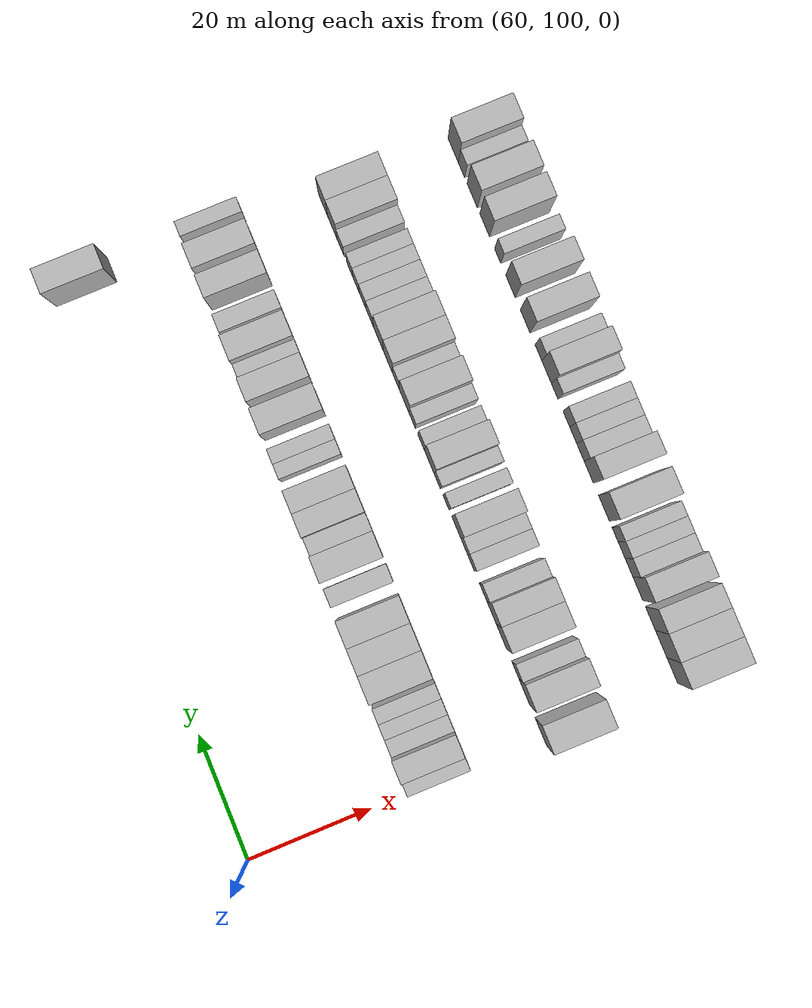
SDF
<sdf version="1.6">
 <world name="default">
  <model name="building_535">
   <static>1</static>
   <pose>69.0000 191.1627 0 0.000000 0.000000 0.000000</pose>
   <link name="link">
    <pose>0 0 4.50 0 0 0</pose>
    <collision name="collision"><geometry><box><size>10.0000 4.0500 9.0000</size></box></geometry></collision>
    <visual name="visual">
     <cast_shadows>0</cast_shadows>
     <geometry><box><size>10.0000 4.0500 9.0000</size></box></geometry>
     <material>
      <script>
       <uri>model://HANNAS_wall/materials/scripts</uri>
       <uri>model://HANNAS_wall/materials/textures</uri>
       <name>vrc/HANNAS_wall</name>
      </script>
     </material>
    </visual>
   </link>
  </model>
  <model name="building_699">
   <static>1</static>
   <pose>91.0000 101.8920 0 0.000000 0.000000 0.000000</pose>
   <link name="link">
    <pose>0 0 3.00 0 0 0</pose>
    <collision name="collision"><geometry><box><size>10.0000 2.4958 6.0000</size></box></geometry></collision>
    <visual name="visual">
     <cast_shadows>0</cast_shadows>
     <geometry><box><size>10.0000 2.4958 6.0000</size></box></geometry>
     <material>
      <script>
       <uri>model://HANNAS_wall/materials/scripts</uri>
       <uri>model://HANNAS_wall/materials/textures</uri>
       <name>vrc/HANNAS_wall</name>
      </script>
     </material>
    </visual>
   </link>
  </model>
  <model name="building_700">
   <static>1</static>
   <pose>91.0000 104.9542 0 0.000000 0.000000 0.000000</pose>
   <link name="link">
    <pose>0 0 4.50 0 0 0</pose>
    <collision name="collision"><geometry><box><size>10.0000 3.6286 9.0000</size></box></geometry></collision>
    <visual name="visual">
     <cast_shadows>0</cast_shadows>
     <geometry><box><size>10.0000 3.6286 9.0000</size></box></geometry>
     <material>
      <script>
       <uri>model://HANNAS_wall/materials/scripts</uri>
       <uri>model://HANNAS_wall/materials/textures</uri>
       <name>vrc/HANNAS_wall</name>
      </script>
     </material>
    </visual>
   </link>
  </model>
  <model name="building_701">
   <static>1</static>
   <pose>91.0000 108.1022 0 0.000000 0.000000 0.000000</pose>
   <link name="link">
    <pose>0 0 3.00 0 0 0</pose>
    <collision name="collision"><geometry><box><size>10.0000 2.6673 6.0000</size></box></geometry></collision>
    <visual name="visual">
     <cast_shadows>0</cast_shadows>
     <geometry><box><size>10.0000 2.6673 6.0000</size></box></geometry>
     <material>
      <script>
       <uri>model://HANNAS_wall/materials/scripts</uri>
       <uri>model://HANNAS_wall/materials/textures</uri>
       <name>vrc/HANNAS_wall</name>
      </script>
     </material>
    </visual>
   </link>
  </model>
  <model name="building_702">
   <static>1</static>
   <pose>91.0000 110.6603 0 0.000000 0.000000 0.000000</pose>
   <link name="link">
    <pose>0 0 3.00 0 0 0</pose>
    <collision name="collision"><geometry><box><size>10.0000 2.4488 6.0000</size></box></geometry></collision>
    <visual name="visual">
     <cast_shadows>0</cast_shadows>
     <geometry><box><size>10.0000 2.4488 6.0000</size></box></geometry>
     <material>
      <script>
       <uri>model://HANNAS_wall/materials/scripts</uri>
       <uri>model://HANNAS_wall/materials/textures</uri>
       <name>vrc/HANNAS_wall</name>
      </script>
     </material>
    </visual>
   </link>
  </model>
  <model name="building_703">
   <static>1</static>
   <pose>91.0000 113.1162 0 0.000000 0.000000 0.000000</pose>
   <link name="link">
    <pose>0 0 3.00 0 0 0</pose>
    <collision name="collision"><geometry><box><size>10.0000 2.4630 6.0000</size></box></geometry></collision>
    <visual name="visual">
     <cast_shadows>0</cast_shadows>
     <geometry><box><size>10.0000 2.4630 6.0000</size></box></geometry>
     <material>
      <script>
       <uri>model://HANNAS_wall/materials/scripts</uri>
       <uri>model://HANNAS_wall/materials/textures</uri>
       <name>vrc/HANNAS_wall</name>
      </script>
     </material>
    </visual>
   </link>
  </model>
  <model name="building_704">
   <static>1</static>
   <pose>91.0000 117.5740 0 0.000000 0.000000 0.000000</pose>
   <link name="link">
    <pose>0 0 4.50 0 0 0</pose>
    <collision name="collision"><geometry><box><size>10.0000 4.4526 9.0000</size></box></geometry></collision>
    <visual name="visual">
     <cast_shadows>0</cast_shadows>
     <geometry><box><size>10.0000 4.4526 9.0000</size></box></geometry>
     <material>
      <script>
       <uri>model://HANNAS_wall/materials/scripts</uri>
       <uri>model://HANNAS_wall/materials/textures</uri>
       <name>vrc/HANNAS_wall</name>
      </script>
     </material>
    </visual>
   </link>
  </model>
  <model name="building_705">
   <static>1</static>
   <pose>91.0000 121.9148 0 0.000000 0.000000 0.000000</pose>
   <link name="link">
    <pose>0 0 4.50 0 0 0</pose>
    <collision name="collision"><geometry><box><size>10.0000 4.2292 9.0000</size></box></geometry></collision>
    <visual name="visual">
     <cast_shadows>0</cast_shadows>
     <geometry><box><size>10.0000 4.2292 9.0000</size></box></geometry>
     <material>
      <script>
       <uri>model://HANNAS_wall/materials/scripts</uri>
       <uri>model://HANNAS_wall/materials/textures</uri>
       <name>vrc/HANNAS_wall</name>
      </script>
     </material>
    </visual>
   </link>
  </model>
  <model name="building_706">
   <static>1</static>
   <pose>91.0000 126.1777 0 0.000000 0.000000 0.000000</pose>
   <link name="link">
    <pose>0 0 4.50 0 0 0</pose>
    <collision name="collision"><geometry><box><size>10.0000 4.2966 9.0000</size></box></geometry></collision>
    <visual name="visual">
     <cast_shadows>0</cast_shadows>
     <geometry><box><size>10.0000 4.2966 9.0000</size></box></geometry>
     <material>
      <script>
       <uri>model://HANNAS_wall/materials/scripts</uri>
       <uri>model://HANNAS_wall/materials/textures</uri>
       <name>vrc/HANNAS_wall</name>
      </script>
     </material>
    </visual>
   </link>
  </model>
  <model name="building_707">
   <static>1</static>
   <pose>91.0000 131.7904 0 0.000000 0.000000 0.000000</pose>
   <link name="link">
    <pose>0 0 3.00 0 0 0</pose>
    <collision name="collision"><geometry><box><size>10.0000 2.9289 6.0000</size></box></geometry></collision>
    <visual name="visual">
     <cast_shadows>0</cast_shadows>
     <geometry><box><size>10.0000 2.9289 6.0000</size></box></geometry>
     <material>
      <script>
       <uri>model://HANNAS_wall/materials/scripts</uri>
       <uri>model://HANNAS_wall/materials/textures</uri>
       <name>vrc/HANNAS_wall</name>
      </script>
     </material>
    </visual>
   </link>
  </model>
  <model name="building_708">
   <static>1</static>
   <pose>91.0000 136.3468 0 0.000000 0.000000 0.000000</pose>
   <link name="link">
    <pose>0 0 4.50 0 0 0</pose>
    <collision name="collision"><geometry><box><size>10.0000 4.1839 9.0000</size></box></geometry></collision>
    <visual name="visual">
     <cast_shadows>0</cast_shadows>
     <geometry><box><size>10.0000 4.1839 9.0000</size></box></geometry>
     <material>
      <script>
       <uri>model://HANNAS_wall/materials/scripts</uri>
       <uri>model://HANNAS_wall/materials/textures</uri>
       <name>vrc/HANNAS_wall</name>
      </script>
     </material>
    </visual>
   </link>
  </model>
  <model name="building_709">
   <static>1</static>
   <pose>91.0000 139.9166 0 0.000000 0.000000 0.000000</pose>
   <link name="link">
    <pose>0 0 3.00 0 0 0</pose>
    <collision name="collision"><geometry><box><size>10.0000 2.9558 6.0000</size></box></geometry></collision>
    <visual name="visual">
     <cast_shadows>0</cast_shadows>
     <geometry><box><size>10.0000 2.9558 6.0000</size></box></geometry>
     <material>
      <script>
       <uri>model://HANNAS_wall/materials/scripts</uri>
       <uri>model://HANNAS_wall/materials/textures</uri>
       <name>vrc/HANNAS_wall</name>
      </script>
     </material>
    </visual>
   </link>
  </model>
  <model name="building_710">
   <static>1</static>
   <pose>91.0000 143.2649 0 0.000000 0.000000 0.000000</pose>
   <link name="link">
    <pose>0 0 4.50 0 0 0</pose>
    <collision name="collision"><geometry><box><size>10.0000 3.7407 9.0000</size></box></geometry></collision>
    <visual name="visual">
     <cast_shadows>0</cast_shadows>
     <geometry><box><size>10.0000 3.7407 9.0000</size></box></geometry>
     <material>
      <script>
       <uri>model://HANNAS_wall/materials/scripts</uri>
       <uri>model://HANNAS_wall/materials/textures</uri>
       <name>vrc/HANNAS_wall</name>
      </script>
     </material>
    </visual>
   </link>
  </model>
  <model name="building_711">
   <static>1</static>
   <pose>91.0000 146.9647 0 0.000000 0.000000 0.000000</pose>
   <link name="link">
    <pose>0 0 4.50 0 0 0</pose>
    <collision name="collision"><geometry><box><size>10.0000 3.6589 9.0000</size></box></geometry></collision>
    <visual name="visual">
     <cast_shadows>0</cast_shadows>
     <geometry><box><size>10.0000 3.6589 9.0000</size></box></geometry>
     <material>
      <script>
       <uri>model://HANNAS_wall/materials/scripts</uri>
       <uri>model://HANNAS_wall/materials/textures</uri>
       <name>vrc/HANNAS_wall</name>
      </script>
     </material>
    </visual>
   </link>
  </model>
  <model name="building_712">
   <static>1</static>
   <pose>91.0000 152.0023 0 0.000000 0.000000 0.000000</pose>
   <link name="link">
    <pose>0 0 3.00 0 0 0</pose>
    <collision name="collision"><geometry><box><size>10.0000 2.4163 6.0000</size></box></geometry></collision>
    <visual name="visual">
     <cast_shadows>0</cast_shadows>
     <geometry><box><size>10.0000 2.4163 6.0000</size></box></geometry>
     <material>
      <script>
       <uri>model://HANNAS_wall/materials/scripts</uri>
       <uri>model://HANNAS_wall/materials/textures</uri>
       <name>vrc/HANNAS_wall</name>
      </script>
     </material>
    </visual>
   </link>
  </model>
  <model name="building_713">
   <static>1</static>
   <pose>91.0000 154.4177 0 0.000000 0.000000 0.000000</pose>
   <link name="link">
    <pose>0 0 3.00 0 0 0</pose>
    <collision name="collision"><geometry><box><size>10.0000 2.4145 6.0000</size></box></geometry></collision>
    <visual name="visual">
     <cast_shadows>0</cast_shadows>
     <geometry><box><size>10.0000 2.4145 6.0000</size></box></geometry>
     <material>
      <script>
       <uri>model://HANNAS_wall/materials/scripts</uri>
       <uri>model://HANNAS_wall/materials/textures</uri>
       <name>vrc/HANNAS_wall</name>
      </script>
     </material>
    </visual>
   </link>
  </model>
  <model name="building_714">
   <static>1</static>
   <pose>91.0000 159.7480 0 0.000000 0.000000 0.000000</pose>
   <link name="link">
    <pose>0 0 4.50 0 0 0</pose>
    <collision name="collision"><geometry><box><size>10.0000 4.2460 9.0000</size></box></geometry></collision>
    <visual name="visual">
     <cast_shadows>0</cast_shadows>
     <geometry><box><size>10.0000 4.2460 9.0000</size></box></geometry>
     <material>
      <script>
       <uri>model://HANNAS_wall/materials/scripts</uri>
       <uri>model://HANNAS_wall/materials/textures</uri>
       <name>vrc/HANNAS_wall</name>
      </script>
     </material>
    </visual>
   </link>
  </model>
  <model name="building_715">
   <static>1</static>
   <pose>91.0000 164.7931 0 0.000000 0.000000 0.000000</pose>
   <link name="link">
    <pose>0 0 4.50 0 0 0</pose>
    <collision name="collision"><geometry><box><size>10.0000 3.8442 9.0000</size></box></geometry></collision>
    <visual name="visual">
     <cast_shadows>0</cast_shadows>
     <geometry><box><size>10.0000 3.8442 9.0000</size></box></geometry>
     <material>
      <script>
       <uri>model://HANNAS_wall/materials/scripts</uri>
       <uri>model://HANNAS_wall/materials/textures</uri>
       <name>vrc/HANNAS_wall</name>
      </script>
     </material>
    </visual>
   </link>
  </model>
  <model name="building_716">
   <static>1</static>
   <pose>91.0000 168.0456 0 0.000000 0.000000 0.000000</pose>
   <link name="link">
    <pose>0 0 3.00 0 0 0</pose>
    <collision name="collision"><geometry><box><size>10.0000 2.6608 6.0000</size></box></geometry></collision>
    <visual name="visual">
     <cast_shadows>0</cast_shadows>
     <geometry><box><size>10.0000 2.6608 6.0000</size></box></geometry>
     <material>
      <script>
       <uri>model://HANNAS_wall/materials/scripts</uri>
       <uri>model://HANNAS_wall/materials/textures</uri>
       <name>vrc/HANNAS_wall</name>
      </script>
     </material>
    </visual>
   </link>
  </model>
  <model name="building_717">
   <static>1</static>
   <pose>91.0000 171.4487 0 0.000000 0.000000 0.000000</pose>
   <link name="link">
    <pose>0 0 4.50 0 0 0</pose>
    <collision name="collision"><geometry><box><size>10.0000 4.1453 9.0000</size></box></geometry></collision>
    <visual name="visual">
     <cast_shadows>0</cast_shadows>
     <geometry><box><size>10.0000 4.1453 9.0000</size></box></geometry>
     <material>
      <script>
       <uri>model://HANNAS_wall/materials/scripts</uri>
       <uri>model://HANNAS_wall/materials/textures</uri>
       <name>vrc/HANNAS_wall</name>
      </script>
     </material>
    </visual>
   </link>
  </model>
  <model name="building_718">
   <static>1</static>
   <pose>91.0000 175.9944 0 0.000000 0.000000 0.000000</pose>
   <link name="link">
    <pose>0 0 3.00 0 0 0</pose>
    <collision name="collision"><geometry><box><size>10.0000 2.9461 6.0000</size></box></geometry></collision>
    <visual name="visual">
     <cast_shadows>0</cast_shadows>
     <geometry><box><size>10.0000 2.9461 6.0000</size></box></geometry>
     <material>
      <script>
       <uri>model://HANNAS_wall/materials/scripts</uri>
       <uri>model://HANNAS_wall/materials/textures</uri>
       <name>vrc/HANNAS_wall</name>
      </script>
     </material>
    </visual>
   </link>
  </model>
  <model name="building_719">
   <static>1</static>
   <pose>91.0000 181.3538 0 0.000000 0.000000 0.000000</pose>
   <link name="link">
    <pose>0 0 4.50 0 0 0</pose>
    <collision name="collision"><geometry><box><size>10.0000 3.7728 9.0000</size></box></geometry></collision>
    <visual name="visual">
     <cast_shadows>0</cast_shadows>
     <geometry><box><size>10.0000 3.7728 9.0000</size></box></geometry>
     <material>
      <script>
       <uri>model://HANNAS_wall/materials/scripts</uri>
       <uri>model://HANNAS_wall/materials/textures</uri>
       <name>vrc/HANNAS_wall</name>
      </script>
     </material>
    </visual>
   </link>
  </model>
  <model name="building_720">
   <static>1</static>
   <pose>91.0000 186.2532 0 0.000000 0.000000 0.000000</pose>
   <link name="link">
    <pose>0 0 4.50 0 0 0</pose>
    <collision name="collision"><geometry><box><size>10.0000 4.0262 9.0000</size></box></geometry></collision>
    <visual name="visual">
     <cast_shadows>0</cast_shadows>
     <geometry><box><size>10.0000 4.0262 9.0000</size></box></geometry>
     <material>
      <script>
       <uri>model://HANNAS_wall/materials/scripts</uri>
       <uri>model://HANNAS_wall/materials/textures</uri>
       <name>vrc/HANNAS_wall</name>
      </script>
     </material>
    </visual>
   </link>
  </model>
  <model name="building_721">
   <static>1</static>
   <pose>91.0000 191.4788 0 0.000000 0.000000 0.000000</pose>
   <link name="link">
    <pose>0 0 3.00 0 0 0</pose>
    <collision name="collision"><geometry><box><size>10.0000 2.4249 6.0000</size></box></geometry></collision>
    <visual name="visual">
     <cast_shadows>0</cast_shadows>
     <geometry><box><size>10.0000 2.4249 6.0000</size></box></geometry>
     <material>
      <script>
       <uri>model://HANNAS_wall/materials/scripts</uri>
       <uri>model://HANNAS_wall/materials/textures</uri>
       <name>vrc/HANNAS_wall</name>
      </script>
     </material>
    </visual>
   </link>
  </model>
  <model name="building_885">
   <static>1</static>
   <pose>113.0000 100.9363 0 0.000000 0.000000 0.000000</pose>
   <link name="link">
    <pose>0 0 4.50 0 0 0</pose>
    <collision name="collision"><geometry><box><size>10.0000 4.4914 9.0000</size></box></geometry></collision>
    <visual name="visual">
     <cast_shadows>0</cast_shadows>
     <geometry><box><size>10.0000 4.4914 9.0000</size></box></geometry>
     <material>
      <script>
       <uri>model://HANNAS_wall/materials/scripts</uri>
       <uri>model://HANNAS_wall/materials/textures</uri>
       <name>vrc/HANNAS_wall</name>
      </script>
     </material>
    </visual>
   </link>
  </model>
  <model name="building_886">
   <static>1</static>
   <pose>113.0000 107.3388 0 0.000000 0.000000 0.000000</pose>
   <link name="link">
    <pose>0 0 4.50 0 0 0</pose>
    <collision name="collision"><geometry><box><size>10.0000 4.3134 9.0000</size></box></geometry></collision>
    <visual name="visual">
     <cast_shadows>0</cast_shadows>
     <geometry><box><size>10.0000 4.3134 9.0000</size></box></geometry>
     <material>
      <script>
       <uri>model://HANNAS_wall/materials/scripts</uri>
       <uri>model://HANNAS_wall/materials/textures</uri>
       <name>vrc/HANNAS_wall</name>
      </script>
     </material>
    </visual>
   </link>
  </model>
  <model name="building_887">
   <static>1</static>
   <pose>113.0000 110.9199 0 0.000000 0.000000 0.000000</pose>
   <link name="link">
    <pose>0 0 3.00 0 0 0</pose>
    <collision name="collision"><geometry><box><size>10.0000 2.8489 6.0000</size></box></geometry></collision>
    <visual name="visual">
     <cast_shadows>0</cast_shadows>
     <geometry><box><size>10.0000 2.8489 6.0000</size></box></geometry>
     <material>
      <script>
       <uri>model://HANNAS_wall/materials/scripts</uri>
       <uri>model://HANNAS_wall/materials/textures</uri>
       <name>vrc/HANNAS_wall</name>
      </script>
     </material>
    </visual>
   </link>
  </model>
  <model name="building_888">
   <static>1</static>
   <pose>113.0000 116.3784 0 0.000000 0.000000 0.000000</pose>
   <link name="link">
    <pose>0 0 4.50 0 0 0</pose>
    <collision name="collision"><geometry><box><size>10.0000 4.0681 9.0000</size></box></geometry></collision>
    <visual name="visual">
     <cast_shadows>0</cast_shadows>
     <geometry><box><size>10.0000 4.0681 9.0000</size></box></geometry>
     <material>
      <script>
       <uri>model://HANNAS_wall/materials/scripts</uri>
       <uri>model://HANNAS_wall/materials/textures</uri>
       <name>vrc/HANNAS_wall</name>
      </script>
     </material>
    </visual>
   </link>
  </model>
  <model name="building_889">
   <static>1</static>
   <pose>113.0000 120.2740 0 0.000000 0.000000 0.000000</pose>
   <link name="link">
    <pose>0 0 4.50 0 0 0</pose>
    <collision name="collision"><geometry><box><size>10.0000 3.7230 9.0000</size></box></geometry></collision>
    <visual name="visual">
     <cast_shadows>0</cast_shadows>
     <geometry><box><size>10.0000 3.7230 9.0000</size></box></geometry>
     <material>
      <script>
       <uri>model://HANNAS_wall/materials/scripts</uri>
       <uri>model://HANNAS_wall/materials/textures</uri>
       <name>vrc/HANNAS_wall</name>
      </script>
     </material>
    </visual>
   </link>
  </model>
  <model name="building_890">
   <static>1</static>
   <pose>113.0000 123.6135 0 0.000000 0.000000 0.000000</pose>
   <link name="link">
    <pose>0 0 3.00 0 0 0</pose>
    <collision name="collision"><geometry><box><size>10.0000 2.9560 6.0000</size></box></geometry></collision>
    <visual name="visual">
     <cast_shadows>0</cast_shadows>
     <geometry><box><size>10.0000 2.9560 6.0000</size></box></geometry>
     <material>
      <script>
       <uri>model://HANNAS_wall/materials/scripts</uri>
       <uri>model://HANNAS_wall/materials/textures</uri>
       <name>vrc/HANNAS_wall</name>
      </script>
     </material>
    </visual>
   </link>
  </model>
  <model name="building_891">
   <static>1</static>
   <pose>113.0000 128.4637 0 0.000000 0.000000 0.000000</pose>
   <link name="link">
    <pose>0 0 3.00 0 0 0</pose>
    <collision name="collision"><geometry><box><size>10.0000 2.7444 6.0000</size></box></geometry></collision>
    <visual name="visual">
     <cast_shadows>0</cast_shadows>
     <geometry><box><size>10.0000 2.7444 6.0000</size></box></geometry>
     <material>
      <script>
       <uri>model://HANNAS_wall/materials/scripts</uri>
       <uri>model://HANNAS_wall/materials/textures</uri>
       <name>vrc/HANNAS_wall</name>
      </script>
     </material>
    </visual>
   </link>
  </model>
  <model name="building_892">
   <static>1</static>
   <pose>113.0000 131.1409 0 0.000000 0.000000 0.000000</pose>
   <link name="link">
    <pose>0 0 3.00 0 0 0</pose>
    <collision name="collision"><geometry><box><size>10.0000 2.6101 6.0000</size></box></geometry></collision>
    <visual name="visual">
     <cast_shadows>0</cast_shadows>
     <geometry><box><size>10.0000 2.6101 6.0000</size></box></geometry>
     <material>
      <script>
       <uri>model://HANNAS_wall/materials/scripts</uri>
       <uri>model://HANNAS_wall/materials/textures</uri>
       <name>vrc/HANNAS_wall</name>
      </script>
     </material>
    </visual>
   </link>
  </model>
  <model name="building_893">
   <static>1</static>
   <pose>113.0000 134.2737 0 0.000000 0.000000 0.000000</pose>
   <link name="link">
    <pose>0 0 4.50 0 0 0</pose>
    <collision name="collision"><geometry><box><size>10.0000 3.6554 9.0000</size></box></geometry></collision>
    <visual name="visual">
     <cast_shadows>0</cast_shadows>
     <geometry><box><size>10.0000 3.6554 9.0000</size></box></geometry>
     <material>
      <script>
       <uri>model://HANNAS_wall/materials/scripts</uri>
       <uri>model://HANNAS_wall/materials/textures</uri>
       <name>vrc/HANNAS_wall</name>
      </script>
     </material>
    </visual>
   </link>
  </model>
  <model name="building_894">
   <static>1</static>
   <pose>113.0000 138.3436 0 0.000000 0.000000 0.000000</pose>
   <link name="link">
    <pose>0 0 3.00 0 0 0</pose>
    <collision name="collision"><geometry><box><size>10.0000 2.4844 6.0000</size></box></geometry></collision>
    <visual name="visual">
     <cast_shadows>0</cast_shadows>
     <geometry><box><size>10.0000 2.4844 6.0000</size></box></geometry>
     <material>
      <script>
       <uri>model://HANNAS_wall/materials/scripts</uri>
       <uri>model://HANNAS_wall/materials/textures</uri>
       <name>vrc/HANNAS_wall</name>
      </script>
     </material>
    </visual>
   </link>
  </model>
  <model name="building_895">
   <static>1</static>
   <pose>113.0000 141.8421 0 0.000000 0.000000 0.000000</pose>
   <link name="link">
    <pose>0 0 3.00 0 0 0</pose>
    <collision name="collision"><geometry><box><size>10.0000 2.5125 6.0000</size></box></geometry></collision>
    <visual name="visual">
     <cast_shadows>0</cast_shadows>
     <geometry><box><size>10.0000 2.5125 6.0000</size></box></geometry>
     <material>
      <script>
       <uri>model://HANNAS_wall/materials/scripts</uri>
       <uri>model://HANNAS_wall/materials/textures</uri>
       <name>vrc/HANNAS_wall</name>
      </script>
     </material>
    </visual>
   </link>
  </model>
  <model name="building_896">
   <static>1</static>
   <pose>113.0000 145.0548 0 0.000000 0.000000 0.000000</pose>
   <link name="link">
    <pose>0 0 4.50 0 0 0</pose>
    <collision name="collision"><geometry><box><size>10.0000 3.9129 9.0000</size></box></geometry></collision>
    <visual name="visual">
     <cast_shadows>0</cast_shadows>
     <geometry><box><size>10.0000 3.9129 9.0000</size></box></geometry>
     <material>
      <script>
       <uri>model://HANNAS_wall/materials/scripts</uri>
       <uri>model://HANNAS_wall/materials/textures</uri>
       <name>vrc/HANNAS_wall</name>
      </script>
     </material>
    </visual>
   </link>
  </model>
  <model name="building_897">
   <static>1</static>
   <pose>113.0000 148.3189 0 0.000000 0.000000 0.000000</pose>
   <link name="link">
    <pose>0 0 3.00 0 0 0</pose>
    <collision name="collision"><geometry><box><size>10.0000 2.6152 6.0000</size></box></geometry></collision>
    <visual name="visual">
     <cast_shadows>0</cast_shadows>
     <geometry><box><size>10.0000 2.6152 6.0000</size></box></geometry>
     <material>
      <script>
       <uri>model://HANNAS_wall/materials/scripts</uri>
       <uri>model://HANNAS_wall/materials/textures</uri>
       <name>vrc/HANNAS_wall</name>
      </script>
     </material>
    </visual>
   </link>
  </model>
  <model name="building_898">
   <static>1</static>
   <pose>113.0000 151.9230 0 0.000000 0.000000 0.000000</pose>
   <link name="link">
    <pose>0 0 3.00 0 0 0</pose>
    <collision name="collision"><geometry><box><size>10.0000 2.5932 6.0000</size></box></geometry></collision>
    <visual name="visual">
     <cast_shadows>0</cast_shadows>
     <geometry><box><size>10.0000 2.5932 6.0000</size></box></geometry>
     <material>
      <script>
       <uri>model://HANNAS_wall/materials/scripts</uri>
       <uri>model://HANNAS_wall/materials/textures</uri>
       <name>vrc/HANNAS_wall</name>
      </script>
     </material>
    </visual>
   </link>
  </model>
  <model name="building_899">
   <static>1</static>
   <pose>113.0000 155.2293 0 0.000000 0.000000 0.000000</pose>
   <link name="link">
    <pose>0 0 4.50 0 0 0</pose>
    <collision name="collision"><geometry><box><size>10.0000 4.0193 9.0000</size></box></geometry></collision>
    <visual name="visual">
     <cast_shadows>0</cast_shadows>
     <geometry><box><size>10.0000 4.0193 9.0000</size></box></geometry>
     <material>
      <script>
       <uri>model://HANNAS_wall/materials/scripts</uri>
       <uri>model://HANNAS_wall/materials/textures</uri>
       <name>vrc/HANNAS_wall</name>
      </script>
     </material>
    </visual>
   </link>
  </model>
  <model name="building_900">
   <static>1</static>
   <pose>113.0000 158.5718 0 0.000000 0.000000 0.000000</pose>
   <link name="link">
    <pose>0 0 3.00 0 0 0</pose>
    <collision name="collision"><geometry><box><size>10.0000 2.6658 6.0000</size></box></geometry></collision>
    <visual name="visual">
     <cast_shadows>0</cast_shadows>
     <geometry><box><size>10.0000 2.6658 6.0000</size></box></geometry>
     <material>
      <script>
       <uri>model://HANNAS_wall/materials/scripts</uri>
       <uri>model://HANNAS_wall/materials/textures</uri>
       <name>vrc/HANNAS_wall</name>
      </script>
     </material>
    </visual>
   </link>
  </model>
  <model name="building_901">
   <static>1</static>
   <pose>113.0000 161.7905 0 0.000000 0.000000 0.000000</pose>
   <link name="link">
    <pose>0 0 4.50 0 0 0</pose>
    <collision name="collision"><geometry><box><size>10.0000 3.7715 9.0000</size></box></geometry></collision>
    <visual name="visual">
     <cast_shadows>0</cast_shadows>
     <geometry><box><size>10.0000 3.7715 9.0000</size></box></geometry>
     <material>
      <script>
       <uri>model://HANNAS_wall/materials/scripts</uri>
       <uri>model://HANNAS_wall/materials/textures</uri>
       <name>vrc/HANNAS_wall</name>
      </script>
     </material>
    </visual>
   </link>
  </model>
  <model name="building_902">
   <static>1</static>
   <pose>113.0000 165.6525 0 0.000000 0.000000 0.000000</pose>
   <link name="link">
    <pose>0 0 4.50 0 0 0</pose>
    <collision name="collision"><geometry><box><size>10.0000 3.9525 9.0000</size></box></geometry></collision>
    <visual name="visual">
     <cast_shadows>0</cast_shadows>
     <geometry><box><size>10.0000 3.9525 9.0000</size></box></geometry>
     <material>
      <script>
       <uri>model://HANNAS_wall/materials/scripts</uri>
       <uri>model://HANNAS_wall/materials/textures</uri>
       <name>vrc/HANNAS_wall</name>
      </script>
     </material>
    </visual>
   </link>
  </model>
  <model name="building_903">
   <static>1</static>
   <pose>113.0000 169.1221 0 0.000000 0.000000 0.000000</pose>
   <link name="link">
    <pose>0 0 3.00 0 0 0</pose>
    <collision name="collision"><geometry><box><size>10.0000 2.9866 6.0000</size></box></geometry></collision>
    <visual name="visual">
     <cast_shadows>0</cast_shadows>
     <geometry><box><size>10.0000 2.9866 6.0000</size></box></geometry>
     <material>
      <script>
       <uri>model://HANNAS_wall/materials/scripts</uri>
       <uri>model://HANNAS_wall/materials/textures</uri>
       <name>vrc/HANNAS_wall</name>
      </script>
     </material>
    </visual>
   </link>
  </model>
  <model name="building_904">
   <static>1</static>
   <pose>113.0000 171.9971 0 0.000000 0.000000 0.000000</pose>
   <link name="link">
    <pose>0 0 3.00 0 0 0</pose>
    <collision name="collision"><geometry><box><size>10.0000 2.7635 6.0000</size></box></geometry></collision>
    <visual name="visual">
     <cast_shadows>0</cast_shadows>
     <geometry><box><size>10.0000 2.7635 6.0000</size></box></geometry>
     <material>
      <script>
       <uri>model://HANNAS_wall/materials/scripts</uri>
       <uri>model://HANNAS_wall/materials/textures</uri>
       <name>vrc/HANNAS_wall</name>
      </script>
     </material>
    </visual>
   </link>
  </model>
  <model name="building_905">
   <static>1</static>
   <pose>113.0000 174.6790 0 0.000000 0.000000 0.000000</pose>
   <link name="link">
    <pose>0 0 3.00 0 0 0</pose>
    <collision name="collision"><geometry><box><size>10.0000 2.6003 6.0000</size></box></geometry></collision>
    <visual name="visual">
     <cast_shadows>0</cast_shadows>
     <geometry><box><size>10.0000 2.6003 6.0000</size></box></geometry>
     <material>
      <script>
       <uri>model://HANNAS_wall/materials/scripts</uri>
       <uri>model://HANNAS_wall/materials/textures</uri>
       <name>vrc/HANNAS_wall</name>
      </script>
     </material>
    </visual>
   </link>
  </model>
  <model name="building_906">
   <static>1</static>
   <pose>113.0000 177.2204 0 0.000000 0.000000 0.000000</pose>
   <link name="link">
    <pose>0 0 3.00 0 0 0</pose>
    <collision name="collision"><geometry><box><size>10.0000 2.4825 6.0000</size></box></geometry></collision>
    <visual name="visual">
     <cast_shadows>0</cast_shadows>
     <geometry><box><size>10.0000 2.4825 6.0000</size></box></geometry>
     <material>
      <script>
       <uri>model://HANNAS_wall/materials/scripts</uri>
       <uri>model://HANNAS_wall/materials/textures</uri>
       <name>vrc/HANNAS_wall</name>
      </script>
     </material>
    </visual>
   </link>
  </model>
  <model name="building_907">
   <static>1</static>
   <pose>113.0000 180.8915 0 0.000000 0.000000 0.000000</pose>
   <link name="link">
    <pose>0 0 3.00 0 0 0</pose>
    <collision name="collision"><geometry><box><size>10.0000 2.8596 6.0000</size></box></geometry></collision>
    <visual name="visual">
     <cast_shadows>0</cast_shadows>
     <geometry><box><size>10.0000 2.8596 6.0000</size></box></geometry>
     <material>
      <script>
       <uri>model://HANNAS_wall/materials/scripts</uri>
       <uri>model://HANNAS_wall/materials/textures</uri>
       <name>vrc/HANNAS_wall</name>
      </script>
     </material>
    </visual>
   </link>
  </model>
  <model name="building_908">
   <static>1</static>
   <pose>113.0000 184.2659 0 0.000000 0.000000 0.000000</pose>
   <link name="link">
    <pose>0 0 4.50 0 0 0</pose>
    <collision name="collision"><geometry><box><size>10.0000 3.8892 9.0000</size></box></geometry></collision>
    <visual name="visual">
     <cast_shadows>0</cast_shadows>
     <geometry><box><size>10.0000 3.8892 9.0000</size></box></geometry>
     <material>
      <script>
       <uri>model://HANNAS_wall/materials/scripts</uri>
       <uri>model://HANNAS_wall/materials/textures</uri>
       <name>vrc/HANNAS_wall</name>
      </script>
     </material>
    </visual>
   </link>
  </model>
  <model name="building_909">
   <static>1</static>
   <pose>113.0000 188.1317 0 0.000000 0.000000 0.000000</pose>
   <link name="link">
    <pose>0 0 4.50 0 0 0</pose>
    <collision name="collision"><geometry><box><size>10.0000 3.8424 9.0000</size></box></geometry></collision>
    <visual name="visual">
     <cast_shadows>0</cast_shadows>
     <geometry><box><size>10.0000 3.8424 9.0000</size></box></geometry>
     <material>
      <script>
       <uri>model://HANNAS_wall/materials/scripts</uri>
       <uri>model://HANNAS_wall/materials/textures</uri>
       <name>vrc/HANNAS_wall</name>
      </script>
     </material>
    </visual>
   </link>
  </model>
  <model name="building_1076">
   <static>1</static>
   <pose>135.0000 101.8088 0 0.000000 0.000000 0.000000</pose>
   <link name="link">
    <pose>0 0 4.50 0 0 0</pose>
    <collision name="collision"><geometry><box><size>10.0000 4.1561 9.0000</size></box></geometry></collision>
    <visual name="visual">
     <cast_shadows>0</cast_shadows>
     <geometry><box><size>10.0000 4.1561 9.0000</size></box></geometry>
     <material>
      <script>
       <uri>model://HANNAS_wall/materials/scripts</uri>
       <uri>model://HANNAS_wall/materials/textures</uri>
       <name>vrc/HANNAS_wall</name>
      </script>
     </material>
    </visual>
   </link>
  </model>
  <model name="building_1077">
   <static>1</static>
   <pose>135.0000 106.1152 0 0.000000 0.000000 0.000000</pose>
   <link name="link">
    <pose>0 0 4.50 0 0 0</pose>
    <collision name="collision"><geometry><box><size>10.0000 4.4568 9.0000</size></box></geometry></collision>
    <visual name="visual">
     <cast_shadows>0</cast_shadows>
     <geometry><box><size>10.0000 4.4568 9.0000</size></box></geometry>
     <material>
      <script>
       <uri>model://HANNAS_wall/materials/scripts</uri>
       <uri>model://HANNAS_wall/materials/textures</uri>
       <name>vrc/HANNAS_wall</name>
      </script>
     </material>
    </visual>
   </link>
  </model>
  <model name="building_1078">
   <static>1</static>
   <pose>135.0000 110.2634 0 0.000000 0.000000 0.000000</pose>
   <link name="link">
    <pose>0 0 4.50 0 0 0</pose>
    <collision name="collision"><geometry><box><size>10.0000 3.8396 9.0000</size></box></geometry></collision>
    <visual name="visual">
     <cast_shadows>0</cast_shadows>
     <geometry><box><size>10.0000 3.8396 9.0000</size></box></geometry>
     <material>
      <script>
       <uri>model://HANNAS_wall/materials/scripts</uri>
       <uri>model://HANNAS_wall/materials/textures</uri>
       <name>vrc/HANNAS_wall</name>
      </script>
     </material>
    </visual>
   </link>
  </model>
  <model name="building_1079">
   <static>1</static>
   <pose>135.0000 115.1418 0 0.000000 0.000000 0.000000</pose>
   <link name="link">
    <pose>0 0 4.50 0 0 0</pose>
    <collision name="collision"><geometry><box><size>10.0000 3.9174 9.0000</size></box></geometry></collision>
    <visual name="visual">
     <cast_shadows>0</cast_shadows>
     <geometry><box><size>10.0000 3.9174 9.0000</size></box></geometry>
     <material>
      <script>
       <uri>model://HANNAS_wall/materials/scripts</uri>
       <uri>model://HANNAS_wall/materials/textures</uri>
       <name>vrc/HANNAS_wall</name>
      </script>
     </material>
    </visual>
   </link>
  </model>
  <model name="building_1080">
   <static>1</static>
   <pose>135.0000 118.5991 0 0.000000 0.000000 0.000000</pose>
   <link name="link">
    <pose>0 0 3.00 0 0 0</pose>
    <collision name="collision"><geometry><box><size>10.0000 2.9971 6.0000</size></box></geometry></collision>
    <visual name="visual">
     <cast_shadows>0</cast_shadows>
     <geometry><box><size>10.0000 2.9971 6.0000</size></box></geometry>
     <material>
      <script>
       <uri>model://HANNAS_wall/materials/scripts</uri>
       <uri>model://HANNAS_wall/materials/textures</uri>
       <name>vrc/HANNAS_wall</name>
      </script>
     </material>
    </visual>
   </link>
  </model>
  <model name="building_1081">
   <static>1</static>
   <pose>135.0000 121.4490 0 0.000000 0.000000 0.000000</pose>
   <link name="link">
    <pose>0 0 3.00 0 0 0</pose>
    <collision name="collision"><geometry><box><size>10.0000 2.7028 6.0000</size></box></geometry></collision>
    <visual name="visual">
     <cast_shadows>0</cast_shadows>
     <geometry><box><size>10.0000 2.7028 6.0000</size></box></geometry>
     <material>
      <script>
       <uri>model://HANNAS_wall/materials/scripts</uri>
       <uri>model://HANNAS_wall/materials/textures</uri>
       <name>vrc/HANNAS_wall</name>
      </script>
     </material>
    </visual>
   </link>
  </model>
  <model name="building_1082">
   <static>1</static>
   <pose>135.0000 124.0145 0 0.000000 0.000000 0.000000</pose>
   <link name="link">
    <pose>0 0 3.00 0 0 0</pose>
    <collision name="collision"><geometry><box><size>10.0000 2.4282 6.0000</size></box></geometry></collision>
    <visual name="visual">
     <cast_shadows>0</cast_shadows>
     <geometry><box><size>10.0000 2.4282 6.0000</size></box></geometry>
     <material>
      <script>
       <uri>model://HANNAS_wall/materials/scripts</uri>
       <uri>model://HANNAS_wall/materials/textures</uri>
       <name>vrc/HANNAS_wall</name>
      </script>
     </material>
    </visual>
   </link>
  </model>
  <model name="building_1083">
   <static>1</static>
   <pose>135.0000 128.3723 0 0.000000 0.000000 0.000000</pose>
   <link name="link">
    <pose>0 0 4.50 0 0 0</pose>
    <collision name="collision"><geometry><box><size>10.0000 4.2874 9.0000</size></box></geometry></collision>
    <visual name="visual">
     <cast_shadows>0</cast_shadows>
     <geometry><box><size>10.0000 4.2874 9.0000</size></box></geometry>
     <material>
      <script>
       <uri>model://HANNAS_wall/materials/scripts</uri>
       <uri>model://HANNAS_wall/materials/textures</uri>
       <name>vrc/HANNAS_wall</name>
      </script>
     </material>
    </visual>
   </link>
  </model>
  <model name="building_1084">
   <static>1</static>
   <pose>135.0000 134.3358 0 0.000000 0.000000 0.000000</pose>
   <link name="link">
    <pose>0 0 4.50 0 0 0</pose>
    <collision name="collision"><geometry><box><size>10.0000 3.6396 9.0000</size></box></geometry></collision>
    <visual name="visual">
     <cast_shadows>0</cast_shadows>
     <geometry><box><size>10.0000 3.6396 9.0000</size></box></geometry>
     <material>
      <script>
       <uri>model://HANNAS_wall/materials/scripts</uri>
       <uri>model://HANNAS_wall/materials/textures</uri>
       <name>vrc/HANNAS_wall</name>
      </script>
     </material>
    </visual>
   </link>
  </model>
  <model name="building_1085">
   <static>1</static>
   <pose>135.0000 137.6121 0 0.000000 0.000000 0.000000</pose>
   <link name="link">
    <pose>0 0 3.00 0 0 0</pose>
    <collision name="collision"><geometry><box><size>10.0000 2.9130 6.0000</size></box></geometry></collision>
    <visual name="visual">
     <cast_shadows>0</cast_shadows>
     <geometry><box><size>10.0000 2.9130 6.0000</size></box></geometry>
     <material>
      <script>
       <uri>model://HANNAS_wall/materials/scripts</uri>
       <uri>model://HANNAS_wall/materials/textures</uri>
       <name>vrc/HANNAS_wall</name>
      </script>
     </material>
    </visual>
   </link>
  </model>
  <model name="building_1086">
   <static>1</static>
   <pose>135.0000 140.4403 0 0.000000 0.000000 0.000000</pose>
   <link name="link">
    <pose>0 0 3.00 0 0 0</pose>
    <collision name="collision"><geometry><box><size>10.0000 2.7434 6.0000</size></box></geometry></collision>
    <visual name="visual">
     <cast_shadows>0</cast_shadows>
     <geometry><box><size>10.0000 2.7434 6.0000</size></box></geometry>
     <material>
      <script>
       <uri>model://HANNAS_wall/materials/scripts</uri>
       <uri>model://HANNAS_wall/materials/textures</uri>
       <name>vrc/HANNAS_wall</name>
      </script>
     </material>
    </visual>
   </link>
  </model>
  <model name="building_1087">
   <static>1</static>
   <pose>135.0000 143.1577 0 0.000000 0.000000 0.000000</pose>
   <link name="link">
    <pose>0 0 3.00 0 0 0</pose>
    <collision name="collision"><geometry><box><size>10.0000 2.6914 6.0000</size></box></geometry></collision>
    <visual name="visual">
     <cast_shadows>0</cast_shadows>
     <geometry><box><size>10.0000 2.6914 6.0000</size></box></geometry>
     <material>
      <script>
       <uri>model://HANNAS_wall/materials/scripts</uri>
       <uri>model://HANNAS_wall/materials/textures</uri>
       <name>vrc/HANNAS_wall</name>
      </script>
     </material>
    </visual>
   </link>
  </model>
  <model name="building_1088">
   <static>1</static>
   <pose>135.0000 147.7822 0 0.000000 0.000000 0.000000</pose>
   <link name="link">
    <pose>0 0 3.00 0 0 0</pose>
    <collision name="collision"><geometry><box><size>10.0000 2.5577 6.0000</size></box></geometry></collision>
    <visual name="visual">
     <cast_shadows>0</cast_shadows>
     <geometry><box><size>10.0000 2.5577 6.0000</size></box></geometry>
     <material>
      <script>
       <uri>model://HANNAS_wall/materials/scripts</uri>
       <uri>model://HANNAS_wall/materials/textures</uri>
       <name>vrc/HANNAS_wall</name>
      </script>
     </material>
    </visual>
   </link>
  </model>
  <model name="building_1089">
   <static>1</static>
   <pose>135.0000 150.9810 0 0.000000 0.000000 0.000000</pose>
   <link name="link">
    <pose>0 0 4.50 0 0 0</pose>
    <collision name="collision"><geometry><box><size>10.0000 3.8399 9.0000</size></box></geometry></collision>
    <visual name="visual">
     <cast_shadows>0</cast_shadows>
     <geometry><box><size>10.0000 3.8399 9.0000</size></box></geometry>
     <material>
      <script>
       <uri>model://HANNAS_wall/materials/scripts</uri>
       <uri>model://HANNAS_wall/materials/textures</uri>
       <name>vrc/HANNAS_wall</name>
      </script>
     </material>
    </visual>
   </link>
  </model>
  <model name="building_1090">
   <static>1</static>
   <pose>135.0000 154.2455 0 0.000000 0.000000 0.000000</pose>
   <link name="link">
    <pose>0 0 3.00 0 0 0</pose>
    <collision name="collision"><geometry><box><size>10.0000 2.6891 6.0000</size></box></geometry></collision>
    <visual name="visual">
     <cast_shadows>0</cast_shadows>
     <geometry><box><size>10.0000 2.6891 6.0000</size></box></geometry>
     <material>
      <script>
       <uri>model://HANNAS_wall/materials/scripts</uri>
       <uri>model://HANNAS_wall/materials/textures</uri>
       <name>vrc/HANNAS_wall</name>
      </script>
     </material>
    </visual>
   </link>
  </model>
  <model name="building_1091">
   <static>1</static>
   <pose>135.0000 159.5585 0 0.000000 0.000000 0.000000</pose>
   <link name="link">
    <pose>0 0 4.50 0 0 0</pose>
    <collision name="collision"><geometry><box><size>10.0000 3.9369 9.0000</size></box></geometry></collision>
    <visual name="visual">
     <cast_shadows>0</cast_shadows>
     <geometry><box><size>10.0000 3.9369 9.0000</size></box></geometry>
     <material>
      <script>
       <uri>model://HANNAS_wall/materials/scripts</uri>
       <uri>model://HANNAS_wall/materials/textures</uri>
       <name>vrc/HANNAS_wall</name>
      </script>
     </material>
    </visual>
   </link>
  </model>
  <model name="building_1092">
   <static>1</static>
   <pose>135.0000 165.4287 0 0.000000 0.000000 0.000000</pose>
   <link name="link">
    <pose>0 0 4.50 0 0 0</pose>
    <collision name="collision"><geometry><box><size>10.0000 3.8035 9.0000</size></box></geometry></collision>
    <visual name="visual">
     <cast_shadows>0</cast_shadows>
     <geometry><box><size>10.0000 3.8035 9.0000</size></box></geometry>
     <material>
      <script>
       <uri>model://HANNAS_wall/materials/scripts</uri>
       <uri>model://HANNAS_wall/materials/textures</uri>
       <name>vrc/HANNAS_wall</name>
      </script>
     </material>
    </visual>
   </link>
  </model>
  <model name="building_1093">
   <static>1</static>
   <pose>135.0000 170.5750 0 0.000000 0.000000 0.000000</pose>
   <link name="link">
    <pose>0 0 3.00 0 0 0</pose>
    <collision name="collision"><geometry><box><size>10.0000 2.4890 6.0000</size></box></geometry></collision>
    <visual name="visual">
     <cast_shadows>0</cast_shadows>
     <geometry><box><size>10.0000 2.4890 6.0000</size></box></geometry>
     <material>
      <script>
       <uri>model://HANNAS_wall/materials/scripts</uri>
       <uri>model://HANNAS_wall/materials/textures</uri>
       <name>vrc/HANNAS_wall</name>
      </script>
     </material>
    </visual>
   </link>
  </model>
  <model name="building_1094">
   <static>1</static>
   <pose>135.0000 175.7921 0 0.000000 0.000000 0.000000</pose>
   <link name="link">
    <pose>0 0 4.50 0 0 0</pose>
    <collision name="collision"><geometry><box><size>10.0000 3.9451 9.0000</size></box></geometry></collision>
    <visual name="visual">
     <cast_shadows>0</cast_shadows>
     <geometry><box><size>10.0000 3.9451 9.0000</size></box></geometry>
     <material>
      <script>
       <uri>model://HANNAS_wall/materials/scripts</uri>
       <uri>model://HANNAS_wall/materials/textures</uri>
       <name>vrc/HANNAS_wall</name>
      </script>
     </material>
    </visual>
   </link>
  </model>
  <model name="building_1095">
   <static>1</static>
   <pose>135.0000 180.8360 0 0.000000 0.000000 0.000000</pose>
   <link name="link">
    <pose>0 0 4.50 0 0 0</pose>
    <collision name="collision"><geometry><box><size>10.0000 4.1428 9.0000</size></box></geometry></collision>
    <visual name="visual">
     <cast_shadows>0</cast_shadows>
     <geometry><box><size>10.0000 4.1428 9.0000</size></box></geometry>
     <material>
      <script>
       <uri>model://HANNAS_wall/materials/scripts</uri>
       <uri>model://HANNAS_wall/materials/textures</uri>
       <name>vrc/HANNAS_wall</name>
      </script>
     </material>
    </visual>
   </link>
  </model>
  <model name="building_1096">
   <static>1</static>
   <pose>135.0000 185.2016 0 0.000000 0.000000 0.000000</pose>
   <link name="link">
    <pose>0 0 3.00 0 0 0</pose>
    <collision name="collision"><geometry><box><size>10.0000 2.5883 6.0000</size></box></geometry></collision>
    <visual name="visual">
     <cast_shadows>0</cast_shadows>
     <geometry><box><size>10.0000 2.5883 6.0000</size></box></geometry>
     <material>
      <script>
       <uri>model://HANNAS_wall/materials/scripts</uri>
       <uri>model://HANNAS_wall/materials/textures</uri>
       <name>vrc/HANNAS_wall</name>
      </script>
     </material>
    </visual>
   </link>
  </model>
  <model name="building_1097">
   <static>1</static>
   <pose>135.0000 188.5665 0 0.000000 0.000000 0.000000</pose>
   <link name="link">
    <pose>0 0 4.50 0 0 0</pose>
    <collision name="collision"><geometry><box><size>10.0000 4.1415 9.0000</size></box></geometry></collision>
    <visual name="visual">
     <cast_shadows>0</cast_shadows>
     <geometry><box><size>10.0000 4.1415 9.0000</size></box></geometry>
     <material>
      <script>
       <uri>model://HANNAS_wall/materials/scripts</uri>
       <uri>model://HANNAS_wall/materials/textures</uri>
       <name>vrc/HANNAS_wall</name>
      </script>
     </material>
    </visual>
   </link>
  </model>
 </world>
</sdf>
